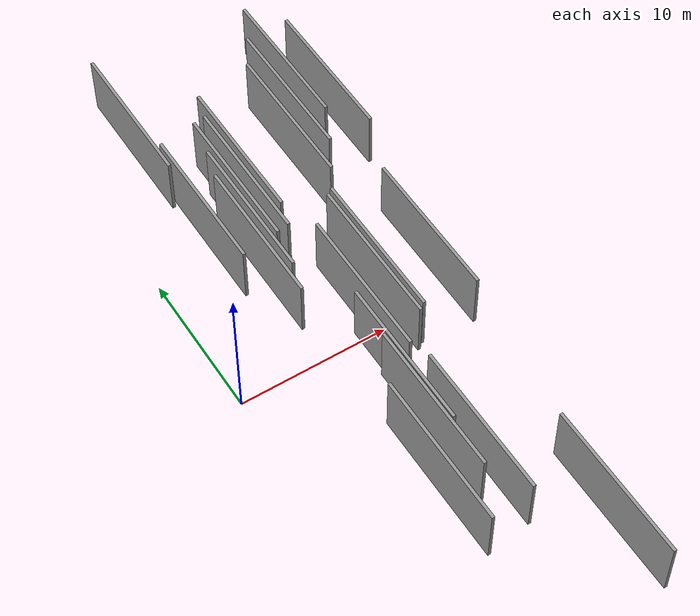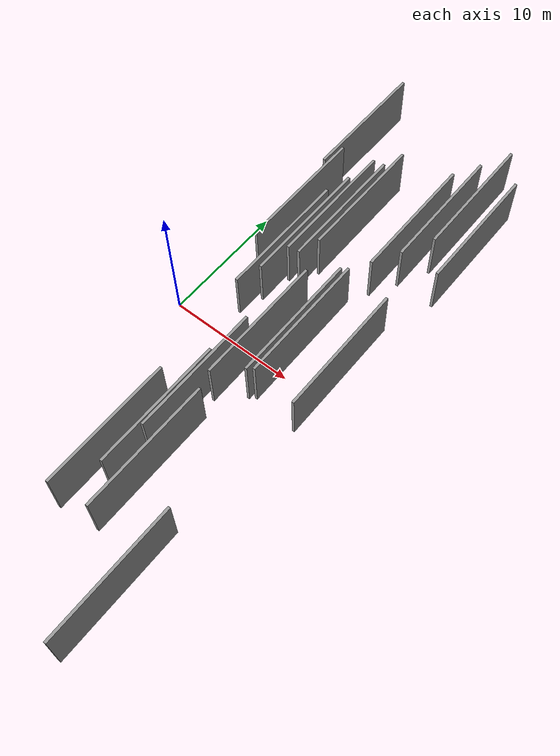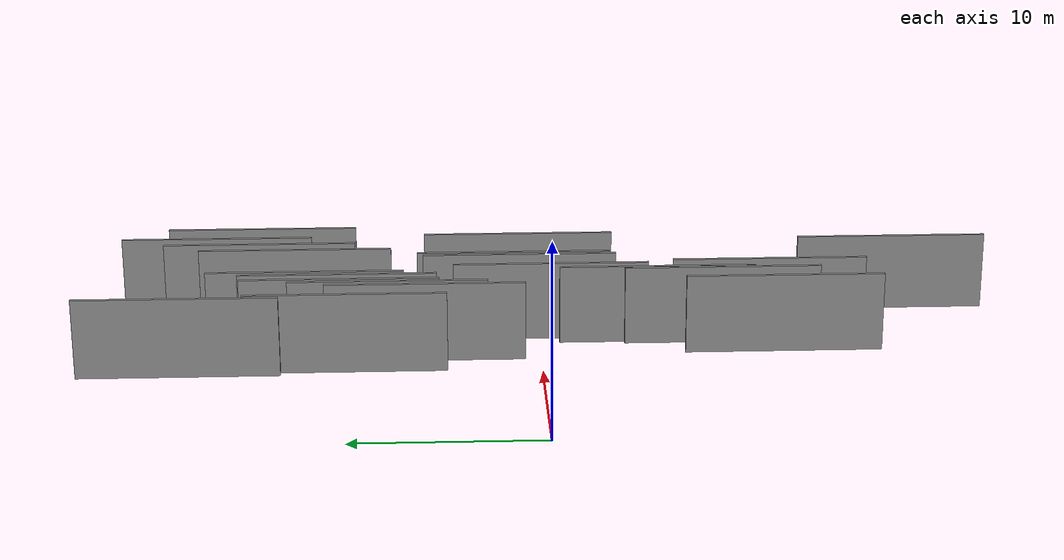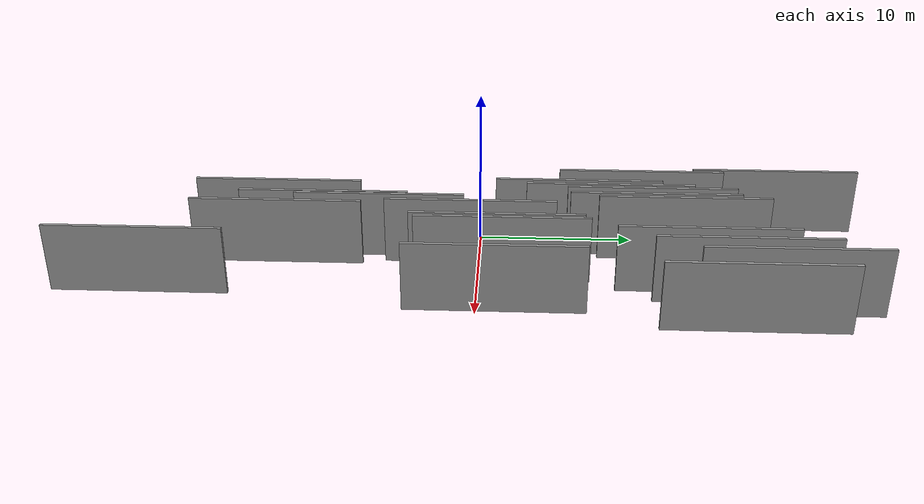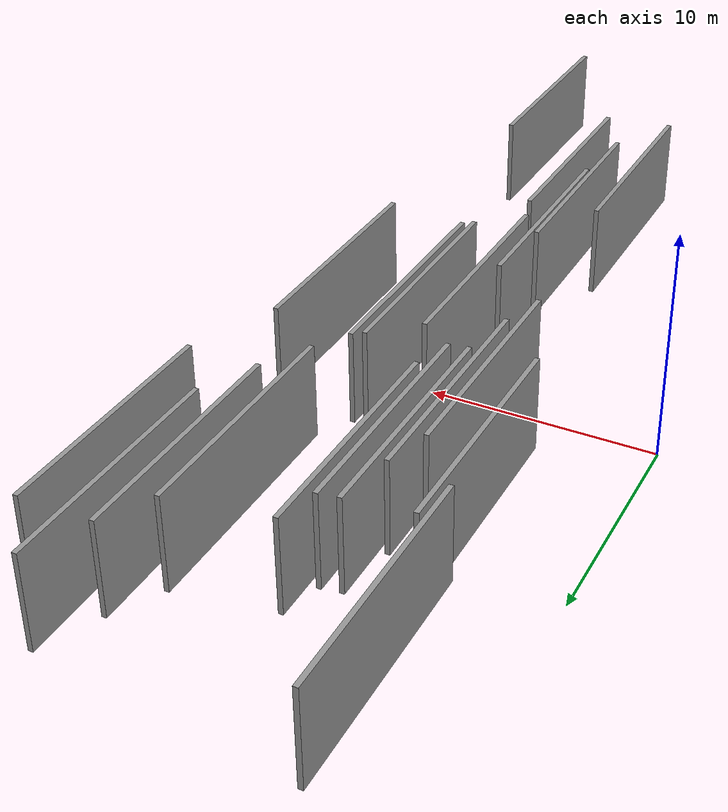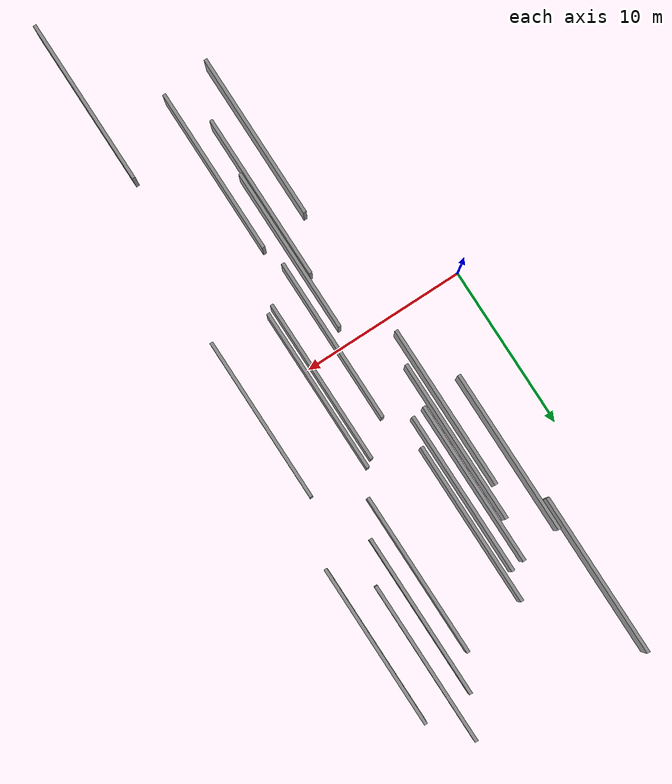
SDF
<sdf version="1.6">
 <world name="default">
  <scene>
   <sky><clouds><speed>12</speed></clouds></sky>
   <ambient>0.4 0.4 0.4 1</ambient>
   <background>0.7 0.7 0.7 1</background>
   <shadows>1</shadows>
  </scene>
  <gravity>0 0 -9.8066</gravity>
  <magnetic_field>6e-06 2.3e-05 -4.2e-05</magnetic_field>
  <physics default="0" name="default_physics" type="ode">
   <ode>
    <solver>
     <type>quick</type>
     <iters>10</iters>
     <sor>1.0</sor>
     <use_dynamic_moi_rescaling>0</use_dynamic_moi_rescaling>
    </solver>
    <constraints>
     <cfm>0</cfm>
     <erp>0.2</erp>
     <contact_max_correcting_vel>100</contact_max_correcting_vel>
     <contact_surface_layer>0.001</contact_surface_layer>
    </constraints>
   </ode>
   <max_step_size>0.004</max_step_size>
   <real_time_factor>1</real_time_factor>
   <real_time_update_rate>250</real_time_update_rate>
  </physics>
  <light name="sun" type="directional">
   <pose>0 0 10 0 0 0</pose>
   <diffuse>0.8 0.8 0.8 1</diffuse>
   <specular>0.2 0.2 0.2 1</specular>
   <attenuation>
    <range>1000</range>
    <constant>0.9</constant>
    <linear>0.01</linear>
    <quadratic>0.001</quadratic>
   </attenuation>
   <direction>-0.5 0.1 -0.9</direction>
  </light>
  <model name="grey_wall_1">
   <static>1</static>
   <pose>8.5832 -11.6122 2.5 0.000000 0.000000 1.570796</pose>
   <link name="link">
    <pose>0 0 2.00 0 0 0</pose>
    <collision name="collision"><geometry><box><size>10.00 0.2 4.00</size></box></geometry></collision>
    <visual name="visual">
     <cast_shadows>0</cast_shadows>
     <geometry><box><size>10.00 0.2 4.00</size></box></geometry>
     <material>
      <script>
       <uri>model://grey_wall/materials/scripts</uri>
       <uri>model://grey_wall/materials/textures</uri>
       <name>vrc/grey_wall</name>
      </script>
     </material>
    </visual>
   </link>
  </model>
  <model name="grey_wall_2">
   <static>1</static>
   <pose>11.2308 12.9089 2.5 0.000000 0.000000 1.570796</pose>
   <link name="link">
    <pose>0 0 2.00 0 0 0</pose>
    <collision name="collision"><geometry><box><size>10.00 0.2 4.00</size></box></geometry></collision>
    <visual name="visual">
     <cast_shadows>0</cast_shadows>
     <geometry><box><size>10.00 0.2 4.00</size></box></geometry>
     <material>
      <script>
       <uri>model://grey_wall/materials/scripts</uri>
       <uri>model://grey_wall/materials/textures</uri>
       <name>vrc/grey_wall</name>
      </script>
     </material>
    </visual>
   </link>
  </model>
  <model name="grey_wall_3">
   <static>1</static>
   <pose>13.4871 17.1658 2.5 0.000000 0.000000 1.570796</pose>
   <link name="link">
    <pose>0 0 2.00 0 0 0</pose>
    <collision name="collision"><geometry><box><size>10.00 0.2 4.00</size></box></geometry></collision>
    <visual name="visual">
     <cast_shadows>0</cast_shadows>
     <geometry><box><size>10.00 0.2 4.00</size></box></geometry>
     <material>
      <script>
       <uri>model://grey_wall/materials/scripts</uri>
       <uri>model://grey_wall/materials/textures</uri>
       <name>vrc/grey_wall</name>
      </script>
     </material>
    </visual>
   </link>
  </model>
  <model name="grey_wall_4">
   <static>1</static>
   <pose>10.3436 1.5458 2.5 0.000000 0.000000 1.570796</pose>
   <link name="link">
    <pose>0 0 2.00 0 0 0</pose>
    <collision name="collision"><geometry><box><size>10.00 0.2 4.00</size></box></geometry></collision>
    <visual name="visual">
     <cast_shadows>0</cast_shadows>
     <geometry><box><size>10.00 0.2 4.00</size></box></geometry>
     <material>
      <script>
       <uri>model://grey_wall/materials/scripts</uri>
       <uri>model://grey_wall/materials/textures</uri>
       <name>vrc/grey_wall</name>
      </script>
     </material>
    </visual>
   </link>
  </model>
  <model name="grey_wall_5">
   <static>1</static>
   <pose>12.3421 14.8504 2.5 0.000000 0.000000 1.570796</pose>
   <link name="link">
    <pose>0 0 2.00 0 0 0</pose>
    <collision name="collision"><geometry><box><size>10.00 0.2 4.00</size></box></geometry></collision>
    <visual name="visual">
     <cast_shadows>0</cast_shadows>
     <geometry><box><size>10.00 0.2 4.00</size></box></geometry>
     <material>
      <script>
       <uri>model://grey_wall/materials/scripts</uri>
       <uri>model://grey_wall/materials/textures</uri>
       <name>vrc/grey_wall</name>
      </script>
     </material>
    </visual>
   </link>
  </model>
  <model name="grey_wall_6">
   <static>1</static>
   <pose>5.5385 7.9643 2.5 0.000000 0.000000 1.570796</pose>
   <link name="link">
    <pose>0 0 2.00 0 0 0</pose>
    <collision name="collision"><geometry><box><size>10.00 0.2 4.00</size></box></geometry></collision>
    <visual name="visual">
     <cast_shadows>0</cast_shadows>
     <geometry><box><size>10.00 0.2 4.00</size></box></geometry>
     <material>
      <script>
       <uri>model://grey_wall/materials/scripts</uri>
       <uri>model://grey_wall/materials/textures</uri>
       <name>vrc/grey_wall</name>
      </script>
     </material>
    </visual>
   </link>
  </model>
  <model name="grey_wall_7">
   <static>1</static>
   <pose>5.6447 -12.0074 2.5 0.000000 0.000000 1.570796</pose>
   <link name="link">
    <pose>0 0 2.00 0 0 0</pose>
    <collision name="collision"><geometry><box><size>10.00 0.2 4.00</size></box></geometry></collision>
    <visual name="visual">
     <cast_shadows>0</cast_shadows>
     <geometry><box><size>10.00 0.2 4.00</size></box></geometry>
     <material>
      <script>
       <uri>model://grey_wall/materials/scripts</uri>
       <uri>model://grey_wall/materials/textures</uri>
       <name>vrc/grey_wall</name>
      </script>
     </material>
    </visual>
   </link>
  </model>
  <model name="grey_wall_8">
   <static>1</static>
   <pose>13.7935 1.1958 2.5 0.000000 0.000000 1.570796</pose>
   <link name="link">
    <pose>0 0 2.00 0 0 0</pose>
    <collision name="collision"><geometry><box><size>10.00 0.2 4.00</size></box></geometry></collision>
    <visual name="visual">
     <cast_shadows>0</cast_shadows>
     <geometry><box><size>10.00 0.2 4.00</size></box></geometry>
     <material>
      <script>
       <uri>model://grey_wall/materials/scripts</uri>
       <uri>model://grey_wall/materials/textures</uri>
       <name>vrc/grey_wall</name>
      </script>
     </material>
    </visual>
   </link>
  </model>
  <model name="grey_wall_9">
   <static>1</static>
   <pose>3.0660 18.2144 2.5 0.000000 0.000000 1.570796</pose>
   <link name="link">
    <pose>0 0 2.00 0 0 0</pose>
    <collision name="collision"><geometry><box><size>10.00 0.2 4.00</size></box></geometry></collision>
    <visual name="visual">
     <cast_shadows>0</cast_shadows>
     <geometry><box><size>10.00 0.2 4.00</size></box></geometry>
     <material>
      <script>
       <uri>model://grey_wall/materials/scripts</uri>
       <uri>model://grey_wall/materials/textures</uri>
       <name>vrc/grey_wall</name>
      </script>
     </material>
    </visual>
   </link>
  </model>
  <model name="grey_wall_10">
   <static>1</static>
   <pose>15.2819 14.8924 2.5 0.000000 0.000000 1.570796</pose>
   <link name="link">
    <pose>0 0 2.00 0 0 0</pose>
    <collision name="collision"><geometry><box><size>10.00 0.2 4.00</size></box></geometry></collision>
    <visual name="visual">
     <cast_shadows>0</cast_shadows>
     <geometry><box><size>10.00 0.2 4.00</size></box></geometry>
     <material>
      <script>
       <uri>model://grey_wall/materials/scripts</uri>
       <uri>model://grey_wall/materials/textures</uri>
       <name>vrc/grey_wall</name>
      </script>
     </material>
    </visual>
   </link>
  </model>
  <model name="grey_wall_11">
   <static>1</static>
   <pose>9.9164 1.2441 2.5 0.000000 0.000000 1.570796</pose>
   <link name="link">
    <pose>0 0 2.00 0 0 0</pose>
    <collision name="collision"><geometry><box><size>10.00 0.2 4.00</size></box></geometry></collision>
    <visual name="visual">
     <cast_shadows>0</cast_shadows>
     <geometry><box><size>10.00 0.2 4.00</size></box></geometry>
     <material>
      <script>
       <uri>model://grey_wall/materials/scripts</uri>
       <uri>model://grey_wall/materials/textures</uri>
       <name>vrc/grey_wall</name>
      </script>
     </material>
    </visual>
   </link>
  </model>
  <model name="grey_wall_12">
   <static>1</static>
   <pose>3.4517 10.0063 2.5 0.000000 0.000000 1.570796</pose>
   <link name="link">
    <pose>0 0 2.00 0 0 0</pose>
    <collision name="collision"><geometry><box><size>10.00 0.2 4.00</size></box></geometry></collision>
    <visual name="visual">
     <cast_shadows>0</cast_shadows>
     <geometry><box><size>10.00 0.2 4.00</size></box></geometry>
     <material>
      <script>
       <uri>model://grey_wall/materials/scripts</uri>
       <uri>model://grey_wall/materials/textures</uri>
       <name>vrc/grey_wall</name>
      </script>
     </material>
    </visual>
   </link>
  </model>
  <model name="grey_wall_13">
   <static>1</static>
   <pose>8.1816 -0.3200 2.5 0.000000 0.000000 1.570796</pose>
   <link name="link">
    <pose>0 0 2.00 0 0 0</pose>
    <collision name="collision"><geometry><box><size>10.00 0.2 4.00</size></box></geometry></collision>
    <visual name="visual">
     <cast_shadows>0</cast_shadows>
     <geometry><box><size>10.00 0.2 4.00</size></box></geometry>
     <material>
      <script>
       <uri>model://grey_wall/materials/scripts</uri>
       <uri>model://grey_wall/materials/textures</uri>
       <name>vrc/grey_wall</name>
      </script>
     </material>
    </visual>
   </link>
  </model>
  <model name="grey_wall_14">
   <static>1</static>
   <pose>4.9936 6.1097 2.5 0.000000 0.000000 1.570796</pose>
   <link name="link">
    <pose>0 0 2.00 0 0 0</pose>
    <collision name="collision"><geometry><box><size>10.00 0.2 4.00</size></box></geometry></collision>
    <visual name="visual">
     <cast_shadows>0</cast_shadows>
     <geometry><box><size>10.00 0.2 4.00</size></box></geometry>
     <material>
      <script>
       <uri>model://grey_wall/materials/scripts</uri>
       <uri>model://grey_wall/materials/textures</uri>
       <name>vrc/grey_wall</name>
      </script>
     </material>
    </visual>
   </link>
  </model>
  <model name="grey_wall_15">
   <static>1</static>
   <pose>7.2830 12.1739 2.5 0.000000 0.000000 1.570796</pose>
   <link name="link">
    <pose>0 0 2.00 0 0 0</pose>
    <collision name="collision"><geometry><box><size>10.00 0.2 4.00</size></box></geometry></collision>
    <visual name="visual">
     <cast_shadows>0</cast_shadows>
     <geometry><box><size>10.00 0.2 4.00</size></box></geometry>
     <material>
      <script>
       <uri>model://grey_wall/materials/scripts</uri>
       <uri>model://grey_wall/materials/textures</uri>
       <name>vrc/grey_wall</name>
      </script>
     </material>
    </visual>
   </link>
  </model>
  <model name="grey_wall_16">
   <static>1</static>
   <pose>7.1995 -9.0365 2.5 0.000000 0.000000 1.570796</pose>
   <link name="link">
    <pose>0 0 2.00 0 0 0</pose>
    <collision name="collision"><geometry><box><size>10.00 0.2 4.00</size></box></geometry></collision>
    <visual name="visual">
     <cast_shadows>0</cast_shadows>
     <geometry><box><size>10.00 0.2 4.00</size></box></geometry>
     <material>
      <script>
       <uri>model://grey_wall/materials/scripts</uri>
       <uri>model://grey_wall/materials/textures</uri>
       <name>vrc/grey_wall</name>
      </script>
     </material>
    </visual>
   </link>
  </model>
  <model name="grey_wall_17">
   <static>1</static>
   <pose>6.7868 10.5396 2.5 0.000000 0.000000 1.570796</pose>
   <link name="link">
    <pose>0 0 2.00 0 0 0</pose>
    <collision name="collision"><geometry><box><size>10.00 0.2 4.00</size></box></geometry></collision>
    <visual name="visual">
     <cast_shadows>0</cast_shadows>
     <geometry><box><size>10.00 0.2 4.00</size></box></geometry>
     <material>
      <script>
       <uri>model://grey_wall/materials/scripts</uri>
       <uri>model://grey_wall/materials/textures</uri>
       <name>vrc/grey_wall</name>
      </script>
     </material>
    </visual>
   </link>
  </model>
  <model name="grey_wall_18">
   <static>1</static>
   <pose>7.4601 -5.7198 2.5 0.000000 0.000000 1.570796</pose>
   <link name="link">
    <pose>0 0 2.00 0 0 0</pose>
    <collision name="collision"><geometry><box><size>10.00 0.2 4.00</size></box></geometry></collision>
    <visual name="visual">
     <cast_shadows>0</cast_shadows>
     <geometry><box><size>10.00 0.2 4.00</size></box></geometry>
     <material>
      <script>
       <uri>model://grey_wall/materials/scripts</uri>
       <uri>model://grey_wall/materials/textures</uri>
       <name>vrc/grey_wall</name>
      </script>
     </material>
    </visual>
   </link>
  </model>
  <model name="grey_wall_19">
   <static>1</static>
   <pose>12.4567 -18.6585 2.5 0.000000 0.000000 1.570796</pose>
   <link name="link">
    <pose>0 0 2.00 0 0 0</pose>
    <collision name="collision"><geometry><box><size>10.00 0.2 4.00</size></box></geometry></collision>
    <visual name="visual">
     <cast_shadows>0</cast_shadows>
     <geometry><box><size>10.00 0.2 4.00</size></box></geometry>
     <material>
      <script>
       <uri>model://grey_wall/materials/scripts</uri>
       <uri>model://grey_wall/materials/textures</uri>
       <name>vrc/grey_wall</name>
      </script>
     </material>
    </visual>
   </link>
  </model>
  <model name="grey_wall_20">
   <static>1</static>
   <pose>5.9805 10.4029 2.5 0.000000 0.000000 1.570796</pose>
   <link name="link">
    <pose>0 0 2.00 0 0 0</pose>
    <collision name="collision"><geometry><box><size>10.00 0.2 4.00</size></box></geometry></collision>
    <visual name="visual">
     <cast_shadows>0</cast_shadows>
     <geometry><box><size>10.00 0.2 4.00</size></box></geometry>
     <material>
      <script>
       <uri>model://grey_wall/materials/scripts</uri>
       <uri>model://grey_wall/materials/textures</uri>
       <name>vrc/grey_wall</name>
      </script>
     </material>
    </visual>
   </link>
  </model>
 </world>
</sdf>
